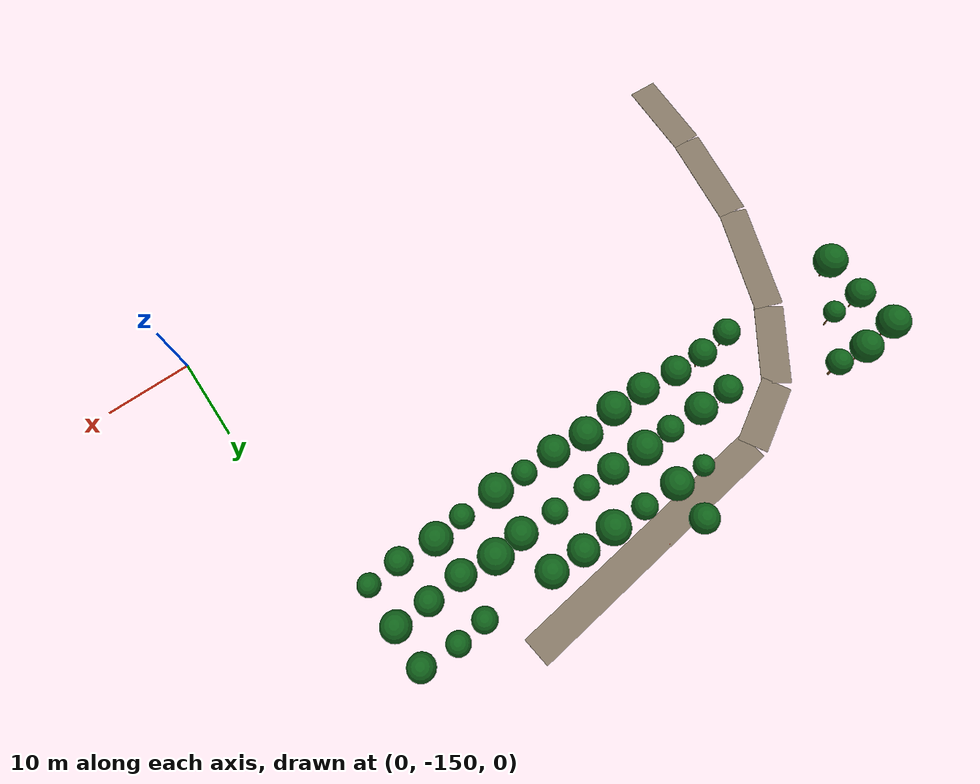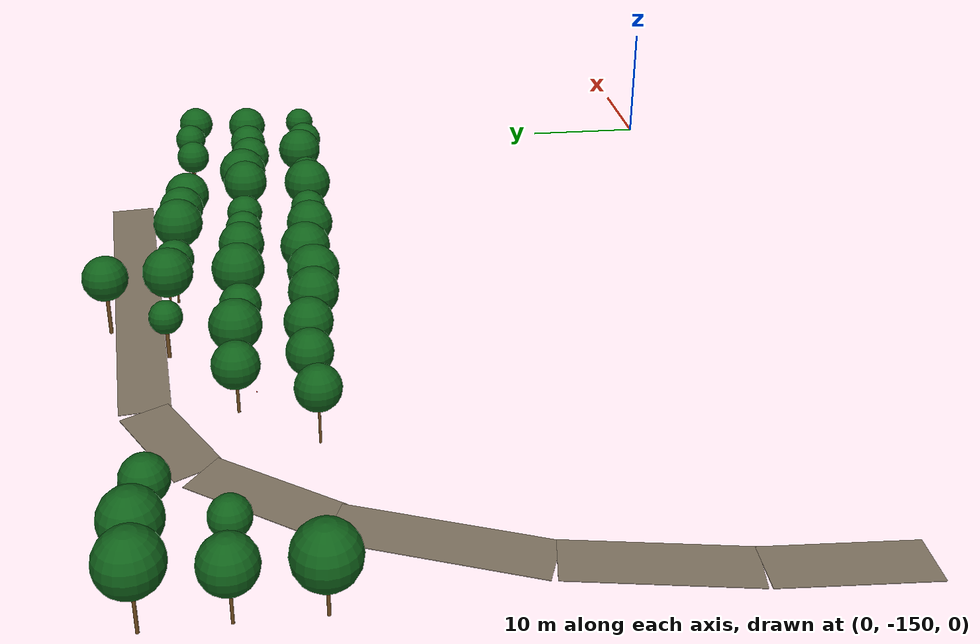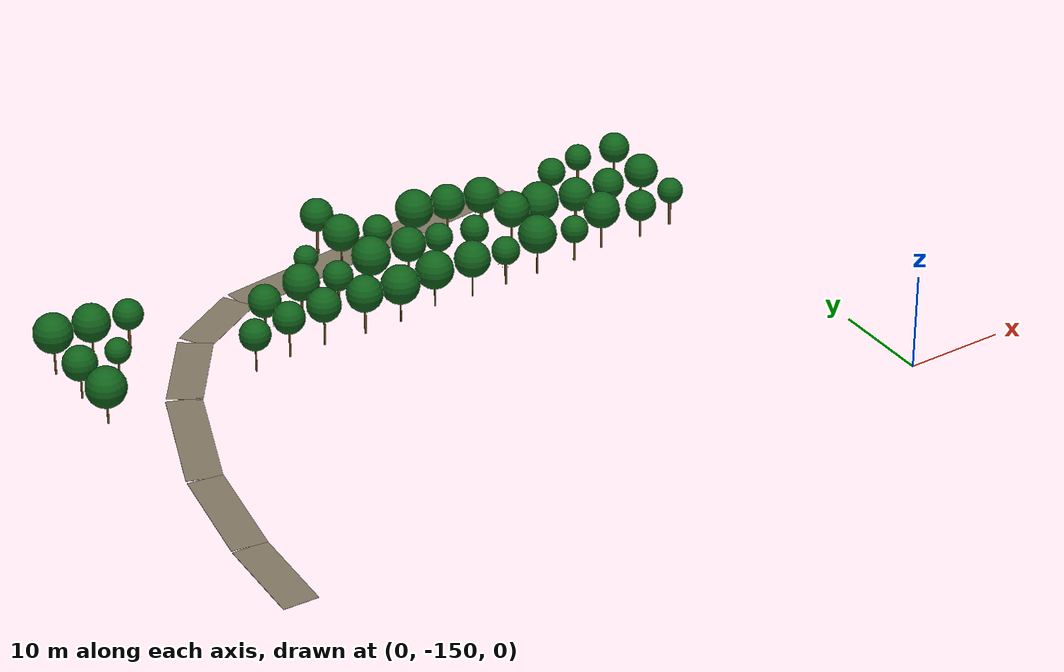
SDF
<sdf version="1.9">
 <world name="cheongsong_orchard">
  <model name="road_19">
   <static>true</static>
   <pose>-67.2 -145.2 0.02 0 0 1.5213</pose>
   <link name="link">
    <collision name="collision">
     <geometry><box><size>9.7 3.5 0.04</size></box></geometry>
     <surface><friction><ode><mu>0.9</mu><mu2>0.9</mu2></ode></friction></surface>
    </collision>
    <visual name="visual">
     <geometry><box><size>9.7 3.5 0.04</size></box></geometry>
     <material><ambient>0.4 0.35 0.28 1</ambient><diffuse>0.5 0.45 0.38 1</diffuse></material>
    </visual>
   </link>
  </model>
  <model name="road_20">
   <static>true</static>
   <pose>-66.0 -134.7 0.02 0 0 1.4038</pose>
   <link name="link">
    <collision name="collision">
     <geometry><box><size>11.4 3.5 0.04</size></box></geometry>
     <surface><friction><ode><mu>0.9</mu><mu2>0.9</mu2></ode></friction></surface>
    </collision>
    <visual name="visual">
     <geometry><box><size>11.4 3.5 0.04</size></box></geometry>
     <material><ambient>0.4 0.35 0.28 1</ambient><diffuse>0.5 0.45 0.38 1</diffuse></material>
    </visual>
   </link>
  </model>
  <model name="road_21">
   <static>true</static>
   <pose>-62.7 -122.9 0.02 0 0 1.1994</pose>
   <link name="link">
    <collision name="collision">
     <geometry><box><size>13.2 3.5 0.04</size></box></geometry>
     <surface><friction><ode><mu>0.9</mu><mu2>0.9</mu2></ode></friction></surface>
    </collision>
    <visual name="visual">
     <geometry><box><size>13.2 3.5 0.04</size></box></geometry>
     <material><ambient>0.4 0.35 0.28 1</ambient><diffuse>0.5 0.45 0.38 1</diffuse></material>
    </visual>
   </link>
  </model>
  <model name="road_22">
   <static>true</static>
   <pose>-57.4 -112.8 0.02 0 0 0.9492</pose>
   <link name="link">
    <collision name="collision">
     <geometry><box><size>9.7 3.5 0.04</size></box></geometry>
     <surface><friction><ode><mu>0.9</mu><mu2>0.9</mu2></ode></friction></surface>
    </collision>
    <visual name="visual">
     <geometry><box><size>9.7 3.5 0.04</size></box></geometry>
     <material><ambient>0.4 0.35 0.28 1</ambient><diffuse>0.5 0.45 0.38 1</diffuse></material>
    </visual>
   </link>
  </model>
  <model name="road_23">
   <static>true</static>
   <pose>-51.0 -106.8 0.02 0 0 0.5135</pose>
   <link name="link">
    <collision name="collision">
     <geometry><box><size>8.2 3.5 0.04</size></box></geometry>
     <surface><friction><ode><mu>0.9</mu><mu2>0.9</mu2></ode></friction></surface>
    </collision>
    <visual name="visual">
     <geometry><box><size>8.2 3.5 0.04</size></box></geometry>
     <material><ambient>0.4 0.35 0.28 1</ambient><diffuse>0.5 0.45 0.38 1</diffuse></material>
    </visual>
   </link>
  </model>
  <model name="road_24">
   <static>true</static>
   <pose>-31.0 -102.9 0.02 0 0 0.1181</pose>
   <link name="link">
    <collision name="collision">
     <geometry><box><size>33.2 3.5 0.04</size></box></geometry>
     <surface><friction><ode><mu>0.9</mu><mu2>0.9</mu2></ode></friction></surface>
    </collision>
    <visual name="visual">
     <geometry><box><size>33.2 3.5 0.04</size></box></geometry>
     <material><ambient>0.4 0.35 0.28 1</ambient><diffuse>0.5 0.45 0.38 1</diffuse></material>
    </visual>
   </link>
  </model>
  <model name="apple_tree_12">
   <static>true</static>
   <pose>-68.01 -116.24 0 0 0 0</pose>
   <link name="link">
    <collision name="trunk_col">
     <pose>0 0 1.01 0 0 0</pose>
     <geometry><cylinder><radius>0.107</radius><length>2.01</length></cylinder></geometry>
    </collision>
    <visual name="trunk_vis">
     <pose>0 0 1.01 0 0 0</pose>
     <geometry><cylinder><radius>0.107</radius><length>2.01</length></cylinder></geometry>
     <material><ambient>0.35 0.22 0.08 1</ambient><diffuse>0.45 0.30 0.12 1</diffuse></material>
    </visual>
    <collision name="canopy_col">
     <pose>0 0 4.01 0 0 0</pose>
     <geometry><sphere><radius>2.00</radius></sphere></geometry>
    </collision>
    <visual name="canopy_vis">
     <pose>0 0 4.01 0 0 0</pose>
     <geometry><sphere><radius>2.00</radius></sphere></geometry>
     <material><ambient>0.04 0.28 0.06 1</ambient><diffuse>0.06 0.38 0.10 1</diffuse></material>
    </visual>
   </link>
  </model>
  <model name="apple_tree_13">
   <static>true</static>
   <pose>-52.17 -116.33 0 0 0 0</pose>
   <link name="link">
    <collision name="trunk_col">
     <pose>0 0 1.29 0 0 0</pose>
     <geometry><cylinder><radius>0.088</radius><length>2.57</length></cylinder></geometry>
    </collision>
    <visual name="trunk_vis">
     <pose>0 0 1.29 0 0 0</pose>
     <geometry><cylinder><radius>0.088</radius><length>2.57</length></cylinder></geometry>
     <material><ambient>0.35 0.22 0.08 1</ambient><diffuse>0.45 0.30 0.12 1</diffuse></material>
    </visual>
    <collision name="canopy_col">
     <pose>0 0 4.12 0 0 0</pose>
     <geometry><sphere><radius>1.55</radius></sphere></geometry>
    </collision>
    <visual name="canopy_vis">
     <pose>0 0 4.12 0 0 0</pose>
     <geometry><sphere><radius>1.55</radius></sphere></geometry>
     <material><ambient>0.04 0.28 0.06 1</ambient><diffuse>0.06 0.38 0.10 1</diffuse></material>
    </visual>
   </link>
  </model>
  <model name="apple_tree_14">
   <static>true</static>
   <pose>-48.22 -115.92 0 0 0 0</pose>
   <link name="link">
    <collision name="trunk_col">
     <pose>0 0 1.40 0 0 0</pose>
     <geometry><cylinder><radius>0.098</radius><length>2.80</length></cylinder></geometry>
    </collision>
    <visual name="trunk_vis">
     <pose>0 0 1.40 0 0 0</pose>
     <geometry><cylinder><radius>0.098</radius><length>2.80</length></cylinder></geometry>
     <material><ambient>0.35 0.22 0.08 1</ambient><diffuse>0.45 0.30 0.12 1</diffuse></material>
    </visual>
    <collision name="canopy_col">
     <pose>0 0 4.40 0 0 0</pose>
     <geometry><sphere><radius>1.60</radius></sphere></geometry>
    </collision>
    <visual name="canopy_vis">
     <pose>0 0 4.40 0 0 0</pose>
     <geometry><sphere><radius>1.60</radius></sphere></geometry>
     <material><ambient>0.04 0.28 0.06 1</ambient><diffuse>0.06 0.38 0.10 1</diffuse></material>
    </visual>
   </link>
  </model>
  <model name="apple_tree_15">
   <static>true</static>
   <pose>-44.38 -115.94 0 0 0 0</pose>
   <link name="link">
    <collision name="trunk_col">
     <pose>0 0 1.40 0 0 0</pose>
     <geometry><cylinder><radius>0.101</radius><length>2.80</length></cylinder></geometry>
    </collision>
    <visual name="trunk_vis">
     <pose>0 0 1.40 0 0 0</pose>
     <geometry><cylinder><radius>0.101</radius><length>2.80</length></cylinder></geometry>
     <material><ambient>0.35 0.22 0.08 1</ambient><diffuse>0.45 0.30 0.12 1</diffuse></material>
    </visual>
    <collision name="canopy_col">
     <pose>0 0 4.51 0 0 0</pose>
     <geometry><sphere><radius>1.71</radius></sphere></geometry>
    </collision>
    <visual name="canopy_vis">
     <pose>0 0 4.51 0 0 0</pose>
     <geometry><sphere><radius>1.71</radius></sphere></geometry>
     <material><ambient>0.04 0.28 0.06 1</ambient><diffuse>0.06 0.38 0.10 1</diffuse></material>
    </visual>
   </link>
  </model>
  <model name="apple_tree_16">
   <static>true</static>
   <pose>-40.12 -116.40 0 0 0 0</pose>
   <link name="link">
    <collision name="trunk_col">
     <pose>0 0 1.35 0 0 0</pose>
     <geometry><cylinder><radius>0.118</radius><length>2.69</length></cylinder></geometry>
    </collision>
    <visual name="trunk_vis">
     <pose>0 0 1.35 0 0 0</pose>
     <geometry><cylinder><radius>0.118</radius><length>2.69</length></cylinder></geometry>
     <material><ambient>0.35 0.22 0.08 1</ambient><diffuse>0.45 0.30 0.12 1</diffuse></material>
    </visual>
    <collision name="canopy_col">
     <pose>0 0 4.52 0 0 0</pose>
     <geometry><sphere><radius>1.82</radius></sphere></geometry>
    </collision>
    <visual name="canopy_vis">
     <pose>0 0 4.52 0 0 0</pose>
     <geometry><sphere><radius>1.82</radius></sphere></geometry>
     <material><ambient>0.04 0.28 0.06 1</ambient><diffuse>0.06 0.38 0.10 1</diffuse></material>
    </visual>
   </link>
  </model>
  <model name="apple_tree_17">
   <static>true</static>
   <pose>-36.17 -116.49 0 0 0 0</pose>
   <link name="link">
    <collision name="trunk_col">
     <pose>0 0 1.13 0 0 0</pose>
     <geometry><cylinder><radius>0.081</radius><length>2.27</length></cylinder></geometry>
    </collision>
    <visual name="trunk_vis">
     <pose>0 0 1.13 0 0 0</pose>
     <geometry><cylinder><radius>0.081</radius><length>2.27</length></cylinder></geometry>
     <material><ambient>0.35 0.22 0.08 1</ambient><diffuse>0.45 0.30 0.12 1</diffuse></material>
    </visual>
    <collision name="canopy_col">
     <pose>0 0 4.21 0 0 0</pose>
     <geometry><sphere><radius>1.94</radius></sphere></geometry>
    </collision>
    <visual name="canopy_vis">
     <pose>0 0 4.21 0 0 0</pose>
     <geometry><sphere><radius>1.94</radius></sphere></geometry>
     <material><ambient>0.04 0.28 0.06 1</ambient><diffuse>0.06 0.38 0.10 1</diffuse></material>
    </visual>
   </link>
  </model>
  <model name="apple_tree_18">
   <static>true</static>
   <pose>-31.96 -115.99 0 0 0 0</pose>
   <link name="link">
    <collision name="trunk_col">
     <pose>0 0 1.12 0 0 0</pose>
     <geometry><cylinder><radius>0.084</radius><length>2.25</length></cylinder></geometry>
    </collision>
    <visual name="trunk_vis">
     <pose>0 0 1.12 0 0 0</pose>
     <geometry><cylinder><radius>0.084</radius><length>2.25</length></cylinder></geometry>
     <material><ambient>0.35 0.22 0.08 1</ambient><diffuse>0.45 0.30 0.12 1</diffuse></material>
    </visual>
    <collision name="canopy_col">
     <pose>0 0 4.15 0 0 0</pose>
     <geometry><sphere><radius>1.90</radius></sphere></geometry>
    </collision>
    <visual name="canopy_vis">
     <pose>0 0 4.15 0 0 0</pose>
     <geometry><sphere><radius>1.90</radius></sphere></geometry>
     <material><ambient>0.04 0.28 0.06 1</ambient><diffuse>0.06 0.38 0.10 1</diffuse></material>
    </visual>
   </link>
  </model>
  <model name="apple_tree_19">
   <static>true</static>
   <pose>-27.92 -116.44 0 0 0 0</pose>
   <link name="link">
    <collision name="trunk_col">
     <pose>0 0 1.21 0 0 0</pose>
     <geometry><cylinder><radius>0.085</radius><length>2.42</length></cylinder></geometry>
    </collision>
    <visual name="trunk_vis">
     <pose>0 0 1.21 0 0 0</pose>
     <geometry><cylinder><radius>0.085</radius><length>2.42</length></cylinder></geometry>
     <material><ambient>0.35 0.22 0.08 1</ambient><diffuse>0.45 0.30 0.12 1</diffuse></material>
    </visual>
    <collision name="canopy_col">
     <pose>0 0 4.23 0 0 0</pose>
     <geometry><sphere><radius>1.81</radius></sphere></geometry>
    </collision>
    <visual name="canopy_vis">
     <pose>0 0 4.23 0 0 0</pose>
     <geometry><sphere><radius>1.81</radius></sphere></geometry>
     <material><ambient>0.04 0.28 0.06 1</ambient><diffuse>0.06 0.38 0.10 1</diffuse></material>
    </visual>
   </link>
  </model>
  <model name="apple_tree_20">
   <static>true</static>
   <pose>-24.03 -116.41 0 0 0 0</pose>
   <link name="link">
    <collision name="trunk_col">
     <pose>0 0 1.21 0 0 0</pose>
     <geometry><cylinder><radius>0.118</radius><length>2.41</length></cylinder></geometry>
    </collision>
    <visual name="trunk_vis">
     <pose>0 0 1.21 0 0 0</pose>
     <geometry><cylinder><radius>0.118</radius><length>2.41</length></cylinder></geometry>
     <material><ambient>0.35 0.22 0.08 1</ambient><diffuse>0.45 0.30 0.12 1</diffuse></material>
    </visual>
    <collision name="canopy_col">
     <pose>0 0 3.83 0 0 0</pose>
     <geometry><sphere><radius>1.41</radius></sphere></geometry>
    </collision>
    <visual name="canopy_vis">
     <pose>0 0 3.83 0 0 0</pose>
     <geometry><sphere><radius>1.41</radius></sphere></geometry>
     <material><ambient>0.04 0.28 0.06 1</ambient><diffuse>0.06 0.38 0.10 1</diffuse></material>
    </visual>
   </link>
  </model>
  <model name="apple_tree_21">
   <static>true</static>
   <pose>-20.36 -116.45 0 0 0 0</pose>
   <link name="link">
    <collision name="trunk_col">
     <pose>0 0 1.28 0 0 0</pose>
     <geometry><cylinder><radius>0.096</radius><length>2.57</length></cylinder></geometry>
    </collision>
    <visual name="trunk_vis">
     <pose>0 0 1.28 0 0 0</pose>
     <geometry><cylinder><radius>0.096</radius><length>2.57</length></cylinder></geometry>
     <material><ambient>0.35 0.22 0.08 1</ambient><diffuse>0.45 0.30 0.12 1</diffuse></material>
    </visual>
    <collision name="canopy_col">
     <pose>0 0 4.49 0 0 0</pose>
     <geometry><sphere><radius>1.92</radius></sphere></geometry>
    </collision>
    <visual name="canopy_vis">
     <pose>0 0 4.49 0 0 0</pose>
     <geometry><sphere><radius>1.92</radius></sphere></geometry>
     <material><ambient>0.04 0.28 0.06 1</ambient><diffuse>0.06 0.38 0.10 1</diffuse></material>
    </visual>
   </link>
  </model>
  <model name="apple_tree_22">
   <static>true</static>
   <pose>-15.97 -116.45 0 0 0 0</pose>
   <link name="link">
    <collision name="trunk_col">
     <pose>0 0 1.09 0 0 0</pose>
     <geometry><cylinder><radius>0.127</radius><length>2.18</length></cylinder></geometry>
    </collision>
    <visual name="trunk_vis">
     <pose>0 0 1.09 0 0 0</pose>
     <geometry><cylinder><radius>0.127</radius><length>2.18</length></cylinder></geometry>
     <material><ambient>0.35 0.22 0.08 1</ambient><diffuse>0.45 0.30 0.12 1</diffuse></material>
    </visual>
    <collision name="canopy_col">
     <pose>0 0 3.55 0 0 0</pose>
     <geometry><sphere><radius>1.37</radius></sphere></geometry>
    </collision>
    <visual name="canopy_vis">
     <pose>0 0 3.55 0 0 0</pose>
     <geometry><sphere><radius>1.37</radius></sphere></geometry>
     <material><ambient>0.04 0.28 0.06 1</ambient><diffuse>0.06 0.38 0.10 1</diffuse></material>
    </visual>
   </link>
  </model>
  <model name="apple_tree_23">
   <static>true</static>
   <pose>-12.41 -115.93 0 0 0 0</pose>
   <link name="link">
    <collision name="trunk_col">
     <pose>0 0 1.25 0 0 0</pose>
     <geometry><cylinder><radius>0.113</radius><length>2.51</length></cylinder></geometry>
    </collision>
    <visual name="trunk_vis">
     <pose>0 0 1.25 0 0 0</pose>
     <geometry><cylinder><radius>0.113</radius><length>2.51</length></cylinder></geometry>
     <material><ambient>0.35 0.22 0.08 1</ambient><diffuse>0.45 0.30 0.12 1</diffuse></material>
    </visual>
    <collision name="canopy_col">
     <pose>0 0 4.33 0 0 0</pose>
     <geometry><sphere><radius>1.83</radius></sphere></geometry>
    </collision>
    <visual name="canopy_vis">
     <pose>0 0 4.33 0 0 0</pose>
     <geometry><sphere><radius>1.83</radius></sphere></geometry>
     <material><ambient>0.04 0.28 0.06 1</ambient><diffuse>0.06 0.38 0.10 1</diffuse></material>
    </visual>
   </link>
  </model>
  <model name="apple_tree_24">
   <static>true</static>
   <pose>-8.01 -116.38 0 0 0 0</pose>
   <link name="link">
    <collision name="trunk_col">
     <pose>0 0 1.02 0 0 0</pose>
     <geometry><cylinder><radius>0.110</radius><length>2.04</length></cylinder></geometry>
    </collision>
    <visual name="trunk_vis">
     <pose>0 0 1.02 0 0 0</pose>
     <geometry><cylinder><radius>0.110</radius><length>2.04</length></cylinder></geometry>
     <material><ambient>0.35 0.22 0.08 1</ambient><diffuse>0.45 0.30 0.12 1</diffuse></material>
    </visual>
    <collision name="canopy_col">
     <pose>0 0 3.58 0 0 0</pose>
     <geometry><sphere><radius>1.54</radius></sphere></geometry>
    </collision>
    <visual name="canopy_vis">
     <pose>0 0 3.58 0 0 0</pose>
     <geometry><sphere><radius>1.54</radius></sphere></geometry>
     <material><ambient>0.04 0.28 0.06 1</ambient><diffuse>0.06 0.38 0.10 1</diffuse></material>
    </visual>
   </link>
  </model>
  <model name="apple_tree_25">
   <static>true</static>
   <pose>-4.21 -116.05 0 0 0 0</pose>
   <link name="link">
    <collision name="trunk_col">
     <pose>0 0 1.30 0 0 0</pose>
     <geometry><cylinder><radius>0.149</radius><length>2.61</length></cylinder></geometry>
    </collision>
    <visual name="trunk_vis">
     <pose>0 0 1.30 0 0 0</pose>
     <geometry><cylinder><radius>0.149</radius><length>2.61</length></cylinder></geometry>
     <material><ambient>0.35 0.22 0.08 1</ambient><diffuse>0.45 0.30 0.12 1</diffuse></material>
    </visual>
    <collision name="canopy_col">
     <pose>0 0 3.89 0 0 0</pose>
     <geometry><sphere><radius>1.28</radius></sphere></geometry>
    </collision>
    <visual name="canopy_vis">
     <pose>0 0 3.89 0 0 0</pose>
     <geometry><sphere><radius>1.28</radius></sphere></geometry>
     <material><ambient>0.04 0.28 0.06 1</ambient><diffuse>0.06 0.38 0.10 1</diffuse></material>
    </visual>
   </link>
  </model>
  <model name="apple_tree_68">
   <static>true</static>
   <pose>-68.04 -111.20 0 0 0 0</pose>
   <link name="link">
    <collision name="trunk_col">
     <pose>0 0 1.10 0 0 0</pose>
     <geometry><cylinder><radius>0.097</radius><length>2.20</length></cylinder></geometry>
    </collision>
    <visual name="trunk_vis">
     <pose>0 0 1.10 0 0 0</pose>
     <geometry><cylinder><radius>0.097</radius><length>2.20</length></cylinder></geometry>
     <material><ambient>0.35 0.22 0.08 1</ambient><diffuse>0.45 0.30 0.12 1</diffuse></material>
    </visual>
    <collision name="canopy_col">
     <pose>0 0 3.91 0 0 0</pose>
     <geometry><sphere><radius>1.71</radius></sphere></geometry>
    </collision>
    <visual name="canopy_vis">
     <pose>0 0 3.91 0 0 0</pose>
     <geometry><sphere><radius>1.71</radius></sphere></geometry>
     <material><ambient>0.04 0.28 0.06 1</ambient><diffuse>0.06 0.38 0.10 1</diffuse></material>
    </visual>
   </link>
  </model>
  <model name="apple_tree_69">
   <static>true</static>
   <pose>-64.03 -111.18 0 0 0 0</pose>
   <link name="link">
    <collision name="trunk_col">
     <pose>0 0 1.28 0 0 0</pose>
     <geometry><cylinder><radius>0.099</radius><length>2.56</length></cylinder></geometry>
    </collision>
    <visual name="trunk_vis">
     <pose>0 0 1.28 0 0 0</pose>
     <geometry><cylinder><radius>0.099</radius><length>2.56</length></cylinder></geometry>
     <material><ambient>0.35 0.22 0.08 1</ambient><diffuse>0.45 0.30 0.12 1</diffuse></material>
    </visual>
    <collision name="canopy_col">
     <pose>0 0 3.82 0 0 0</pose>
     <geometry><sphere><radius>1.26</radius></sphere></geometry>
    </collision>
    <visual name="canopy_vis">
     <pose>0 0 3.82 0 0 0</pose>
     <geometry><sphere><radius>1.26</radius></sphere></geometry>
     <material><ambient>0.04 0.28 0.06 1</ambient><diffuse>0.06 0.38 0.10 1</diffuse></material>
    </visual>
   </link>
  </model>
  <model name="apple_tree_70">
   <static>true</static>
   <pose>-48.07 -111.07 0 0 0 0</pose>
   <link name="link">
    <collision name="trunk_col">
     <pose>0 0 1.01 0 0 0</pose>
     <geometry><cylinder><radius>0.109</radius><length>2.01</length></cylinder></geometry>
    </collision>
    <visual name="trunk_vis">
     <pose>0 0 1.01 0 0 0</pose>
     <geometry><cylinder><radius>0.109</radius><length>2.01</length></cylinder></geometry>
     <material><ambient>0.35 0.22 0.08 1</ambient><diffuse>0.45 0.30 0.12 1</diffuse></material>
    </visual>
    <collision name="canopy_col">
     <pose>0 0 3.65 0 0 0</pose>
     <geometry><sphere><radius>1.63</radius></sphere></geometry>
    </collision>
    <visual name="canopy_vis">
     <pose>0 0 3.65 0 0 0</pose>
     <geometry><sphere><radius>1.63</radius></sphere></geometry>
     <material><ambient>0.04 0.28 0.06 1</ambient><diffuse>0.06 0.38 0.10 1</diffuse></material>
    </visual>
   </link>
  </model>
  <model name="apple_tree_71">
   <static>true</static>
   <pose>-43.95 -110.99 0 0 0 0</pose>
   <link name="link">
    <collision name="trunk_col">
     <pose>0 0 1.24 0 0 0</pose>
     <geometry><cylinder><radius>0.131</radius><length>2.47</length></cylinder></geometry>
    </collision>
    <visual name="trunk_vis">
     <pose>0 0 1.24 0 0 0</pose>
     <geometry><cylinder><radius>0.131</radius><length>2.47</length></cylinder></geometry>
     <material><ambient>0.35 0.22 0.08 1</ambient><diffuse>0.45 0.30 0.12 1</diffuse></material>
    </visual>
    <collision name="canopy_col">
     <pose>0 0 4.31 0 0 0</pose>
     <geometry><sphere><radius>1.84</radius></sphere></geometry>
    </collision>
    <visual name="canopy_vis">
     <pose>0 0 4.31 0 0 0</pose>
     <geometry><sphere><radius>1.84</radius></sphere></geometry>
     <material><ambient>0.04 0.28 0.06 1</ambient><diffuse>0.06 0.38 0.10 1</diffuse></material>
    </visual>
   </link>
  </model>
  <model name="apple_tree_72">
   <static>true</static>
   <pose>-39.95 -111.20 0 0 0 0</pose>
   <link name="link">
    <collision name="trunk_col">
     <pose>0 0 1.11 0 0 0</pose>
     <geometry><cylinder><radius>0.114</radius><length>2.22</length></cylinder></geometry>
    </collision>
    <visual name="trunk_vis">
     <pose>0 0 1.11 0 0 0</pose>
     <geometry><cylinder><radius>0.114</radius><length>2.22</length></cylinder></geometry>
     <material><ambient>0.35 0.22 0.08 1</ambient><diffuse>0.45 0.30 0.12 1</diffuse></material>
    </visual>
    <collision name="canopy_col">
     <pose>0 0 3.73 0 0 0</pose>
     <geometry><sphere><radius>1.51</radius></sphere></geometry>
    </collision>
    <visual name="canopy_vis">
     <pose>0 0 3.73 0 0 0</pose>
     <geometry><sphere><radius>1.51</radius></sphere></geometry>
     <material><ambient>0.04 0.28 0.06 1</ambient><diffuse>0.06 0.38 0.10 1</diffuse></material>
    </visual>
   </link>
  </model>
  <model name="apple_tree_73">
   <static>true</static>
   <pose>-36.09 -111.01 0 0 0 0</pose>
   <link name="link">
    <collision name="trunk_col">
     <pose>0 0 1.33 0 0 0</pose>
     <geometry><cylinder><radius>0.139</radius><length>2.66</length></cylinder></geometry>
    </collision>
    <visual name="trunk_vis">
     <pose>0 0 1.33 0 0 0</pose>
     <geometry><cylinder><radius>0.139</radius><length>2.66</length></cylinder></geometry>
     <material><ambient>0.35 0.22 0.08 1</ambient><diffuse>0.45 0.30 0.12 1</diffuse></material>
    </visual>
    <collision name="canopy_col">
     <pose>0 0 4.59 0 0 0</pose>
     <geometry><sphere><radius>1.94</radius></sphere></geometry>
    </collision>
    <visual name="canopy_vis">
     <pose>0 0 4.59 0 0 0</pose>
     <geometry><sphere><radius>1.94</radius></sphere></geometry>
     <material><ambient>0.04 0.28 0.06 1</ambient><diffuse>0.06 0.38 0.10 1</diffuse></material>
    </visual>
   </link>
  </model>
  <model name="apple_tree_74">
   <static>true</static>
   <pose>-31.90 -111.17 0 0 0 0</pose>
   <link name="link">
    <collision name="trunk_col">
     <pose>0 0 1.42 0 0 0</pose>
     <geometry><cylinder><radius>0.121</radius><length>2.83</length></cylinder></geometry>
    </collision>
    <visual name="trunk_vis">
     <pose>0 0 1.42 0 0 0</pose>
     <geometry><cylinder><radius>0.121</radius><length>2.83</length></cylinder></geometry>
     <material><ambient>0.35 0.22 0.08 1</ambient><diffuse>0.45 0.30 0.12 1</diffuse></material>
    </visual>
    <collision name="canopy_col">
     <pose>0 0 4.56 0 0 0</pose>
     <geometry><sphere><radius>1.73</radius></sphere></geometry>
    </collision>
    <visual name="canopy_vis">
     <pose>0 0 4.56 0 0 0</pose>
     <geometry><sphere><radius>1.73</radius></sphere></geometry>
     <material><ambient>0.04 0.28 0.06 1</ambient><diffuse>0.06 0.38 0.10 1</diffuse></material>
    </visual>
   </link>
  </model>
  <model name="apple_tree_75">
   <static>true</static>
   <pose>-28.44 -111.23 0 0 0 0</pose>
   <link name="link">
    <collision name="trunk_col">
     <pose>0 0 1.40 0 0 0</pose>
     <geometry><cylinder><radius>0.093</radius><length>2.80</length></cylinder></geometry>
    </collision>
    <visual name="trunk_vis">
     <pose>0 0 1.40 0 0 0</pose>
     <geometry><cylinder><radius>0.093</radius><length>2.80</length></cylinder></geometry>
     <material><ambient>0.35 0.22 0.08 1</ambient><diffuse>0.45 0.30 0.12 1</diffuse></material>
    </visual>
    <collision name="canopy_col">
     <pose>0 0 4.20 0 0 0</pose>
     <geometry><sphere><radius>1.41</radius></sphere></geometry>
    </collision>
    <visual name="canopy_vis">
     <pose>0 0 4.20 0 0 0</pose>
     <geometry><sphere><radius>1.41</radius></sphere></geometry>
     <material><ambient>0.04 0.28 0.06 1</ambient><diffuse>0.06 0.38 0.10 1</diffuse></material>
    </visual>
   </link>
  </model>
  <model name="apple_tree_76">
   <static>true</static>
   <pose>-24.29 -111.22 0 0 0 0</pose>
   <link name="link">
    <collision name="trunk_col">
     <pose>0 0 1.14 0 0 0</pose>
     <geometry><cylinder><radius>0.142</radius><length>2.28</length></cylinder></geometry>
    </collision>
    <visual name="trunk_vis">
     <pose>0 0 1.14 0 0 0</pose>
     <geometry><cylinder><radius>0.142</radius><length>2.28</length></cylinder></geometry>
     <material><ambient>0.35 0.22 0.08 1</ambient><diffuse>0.45 0.30 0.12 1</diffuse></material>
    </visual>
    <collision name="canopy_col">
     <pose>0 0 3.70 0 0 0</pose>
     <geometry><sphere><radius>1.42</radius></sphere></geometry>
    </collision>
    <visual name="canopy_vis">
     <pose>0 0 3.70 0 0 0</pose>
     <geometry><sphere><radius>1.42</radius></sphere></geometry>
     <material><ambient>0.04 0.28 0.06 1</ambient><diffuse>0.06 0.38 0.10 1</diffuse></material>
    </visual>
   </link>
  </model>
  <model name="apple_tree_77">
   <static>true</static>
   <pose>-19.92 -111.24 0 0 0 0</pose>
   <link name="link">
    <collision name="trunk_col">
     <pose>0 0 1.38 0 0 0</pose>
     <geometry><cylinder><radius>0.113</radius><length>2.76</length></cylinder></geometry>
    </collision>
    <visual name="trunk_vis">
     <pose>0 0 1.38 0 0 0</pose>
     <geometry><cylinder><radius>0.113</radius><length>2.76</length></cylinder></geometry>
     <material><ambient>0.35 0.22 0.08 1</ambient><diffuse>0.45 0.30 0.12 1</diffuse></material>
    </visual>
    <collision name="canopy_col">
     <pose>0 0 4.56 0 0 0</pose>
     <geometry><sphere><radius>1.80</radius></sphere></geometry>
    </collision>
    <visual name="canopy_vis">
     <pose>0 0 4.56 0 0 0</pose>
     <geometry><sphere><radius>1.80</radius></sphere></geometry>
     <material><ambient>0.04 0.28 0.06 1</ambient><diffuse>0.06 0.38 0.10 1</diffuse></material>
    </visual>
   </link>
  </model>
  <model name="apple_tree_78">
   <static>true</static>
   <pose>-16.46 -110.92 0 0 0 0</pose>
   <link name="link">
    <collision name="trunk_col">
     <pose>0 0 1.08 0 0 0</pose>
     <geometry><cylinder><radius>0.085</radius><length>2.17</length></cylinder></geometry>
    </collision>
    <visual name="trunk_vis">
     <pose>0 0 1.08 0 0 0</pose>
     <geometry><cylinder><radius>0.085</radius><length>2.17</length></cylinder></geometry>
     <material><ambient>0.35 0.22 0.08 1</ambient><diffuse>0.45 0.30 0.12 1</diffuse></material>
    </visual>
    <collision name="canopy_col">
     <pose>0 0 4.13 0 0 0</pose>
     <geometry><sphere><radius>1.97</radius></sphere></geometry>
    </collision>
    <visual name="canopy_vis">
     <pose>0 0 4.13 0 0 0</pose>
     <geometry><sphere><radius>1.97</radius></sphere></geometry>
     <material><ambient>0.04 0.28 0.06 1</ambient><diffuse>0.06 0.38 0.10 1</diffuse></material>
    </visual>
   </link>
  </model>
  <model name="apple_tree_79">
   <static>true</static>
   <pose>-12.47 -111.47 0 0 0 0</pose>
   <link name="link">
    <collision name="trunk_col">
     <pose>0 0 1.10 0 0 0</pose>
     <geometry><cylinder><radius>0.139</radius><length>2.19</length></cylinder></geometry>
    </collision>
    <visual name="trunk_vis">
     <pose>0 0 1.10 0 0 0</pose>
     <geometry><cylinder><radius>0.139</radius><length>2.19</length></cylinder></geometry>
     <material><ambient>0.35 0.22 0.08 1</ambient><diffuse>0.45 0.30 0.12 1</diffuse></material>
    </visual>
    <collision name="canopy_col">
     <pose>0 0 3.89 0 0 0</pose>
     <geometry><sphere><radius>1.70</radius></sphere></geometry>
    </collision>
    <visual name="canopy_vis">
     <pose>0 0 3.89 0 0 0</pose>
     <geometry><sphere><radius>1.70</radius></sphere></geometry>
     <material><ambient>0.04 0.28 0.06 1</ambient><diffuse>0.06 0.38 0.10 1</diffuse></material>
    </visual>
   </link>
  </model>
  <model name="apple_tree_80">
   <static>true</static>
   <pose>-8.35 -111.21 0 0 0 0</pose>
   <link name="link">
    <collision name="trunk_col">
     <pose>0 0 1.03 0 0 0</pose>
     <geometry><cylinder><radius>0.146</radius><length>2.06</length></cylinder></geometry>
    </collision>
    <visual name="trunk_vis">
     <pose>0 0 1.03 0 0 0</pose>
     <geometry><cylinder><radius>0.146</radius><length>2.06</length></cylinder></geometry>
     <material><ambient>0.35 0.22 0.08 1</ambient><diffuse>0.45 0.30 0.12 1</diffuse></material>
    </visual>
    <collision name="canopy_col">
     <pose>0 0 3.63 0 0 0</pose>
     <geometry><sphere><radius>1.57</radius></sphere></geometry>
    </collision>
    <visual name="canopy_vis">
     <pose>0 0 3.63 0 0 0</pose>
     <geometry><sphere><radius>1.57</radius></sphere></geometry>
     <material><ambient>0.04 0.28 0.06 1</ambient><diffuse>0.06 0.38 0.10 1</diffuse></material>
    </visual>
   </link>
  </model>
  <model name="apple_tree_81">
   <static>true</static>
   <pose>-4.25 -111.06 0 0 0 0</pose>
   <link name="link">
    <collision name="trunk_col">
     <pose>0 0 1.01 0 0 0</pose>
     <geometry><cylinder><radius>0.128</radius><length>2.02</length></cylinder></geometry>
    </collision>
    <visual name="trunk_vis">
     <pose>0 0 1.01 0 0 0</pose>
     <geometry><cylinder><radius>0.128</radius><length>2.02</length></cylinder></geometry>
     <material><ambient>0.35 0.22 0.08 1</ambient><diffuse>0.45 0.30 0.12 1</diffuse></material>
    </visual>
    <collision name="canopy_col">
     <pose>0 0 3.73 0 0 0</pose>
     <geometry><sphere><radius>1.70</radius></sphere></geometry>
    </collision>
    <visual name="canopy_vis">
     <pose>0 0 3.73 0 0 0</pose>
     <geometry><sphere><radius>1.70</radius></sphere></geometry>
     <material><ambient>0.04 0.28 0.06 1</ambient><diffuse>0.06 0.38 0.10 1</diffuse></material>
    </visual>
   </link>
  </model>
  <model name="apple_tree_122">
   <static>true</static>
   <pose>-68.20 -106.29 0 0 0 0</pose>
   <link name="link">
    <collision name="trunk_col">
     <pose>0 0 1.35 0 0 0</pose>
     <geometry><cylinder><radius>0.106</radius><length>2.69</length></cylinder></geometry>
    </collision>
    <visual name="trunk_vis">
     <pose>0 0 1.35 0 0 0</pose>
     <geometry><cylinder><radius>0.106</radius><length>2.69</length></cylinder></geometry>
     <material><ambient>0.35 0.22 0.08 1</ambient><diffuse>0.45 0.30 0.12 1</diffuse></material>
    </visual>
    <collision name="canopy_col">
     <pose>0 0 4.64 0 0 0</pose>
     <geometry><sphere><radius>1.95</radius></sphere></geometry>
    </collision>
    <visual name="canopy_vis">
     <pose>0 0 4.64 0 0 0</pose>
     <geometry><sphere><radius>1.95</radius></sphere></geometry>
     <material><ambient>0.04 0.28 0.06 1</ambient><diffuse>0.06 0.38 0.10 1</diffuse></material>
    </visual>
   </link>
  </model>
  <model name="apple_tree_123">
   <static>true</static>
   <pose>-63.97 -105.90 0 0 0 0</pose>
   <link name="link">
    <collision name="trunk_col">
     <pose>0 0 1.09 0 0 0</pose>
     <geometry><cylinder><radius>0.107</radius><length>2.18</length></cylinder></geometry>
    </collision>
    <visual name="trunk_vis">
     <pose>0 0 1.09 0 0 0</pose>
     <geometry><cylinder><radius>0.107</radius><length>2.18</length></cylinder></geometry>
     <material><ambient>0.35 0.22 0.08 1</ambient><diffuse>0.45 0.30 0.12 1</diffuse></material>
    </visual>
    <collision name="canopy_col">
     <pose>0 0 4.07 0 0 0</pose>
     <geometry><sphere><radius>1.88</radius></sphere></geometry>
    </collision>
    <visual name="canopy_vis">
     <pose>0 0 4.07 0 0 0</pose>
     <geometry><sphere><radius>1.88</radius></sphere></geometry>
     <material><ambient>0.04 0.28 0.06 1</ambient><diffuse>0.06 0.38 0.10 1</diffuse></material>
    </visual>
   </link>
  </model>
  <model name="apple_tree_124">
   <static>true</static>
   <pose>-60.24 -106.30 0 0 0 0</pose>
   <link name="link">
    <collision name="trunk_col">
     <pose>0 0 1.21 0 0 0</pose>
     <geometry><cylinder><radius>0.144</radius><length>2.41</length></cylinder></geometry>
    </collision>
    <visual name="trunk_vis">
     <pose>0 0 1.21 0 0 0</pose>
     <geometry><cylinder><radius>0.144</radius><length>2.41</length></cylinder></geometry>
     <material><ambient>0.35 0.22 0.08 1</ambient><diffuse>0.45 0.30 0.12 1</diffuse></material>
    </visual>
    <collision name="canopy_col">
     <pose>0 0 3.92 0 0 0</pose>
     <geometry><sphere><radius>1.50</radius></sphere></geometry>
    </collision>
    <visual name="canopy_vis">
     <pose>0 0 3.92 0 0 0</pose>
     <geometry><sphere><radius>1.50</radius></sphere></geometry>
     <material><ambient>0.04 0.28 0.06 1</ambient><diffuse>0.06 0.38 0.10 1</diffuse></material>
    </visual>
   </link>
  </model>
  <model name="apple_tree_125">
   <static>true</static>
   <pose>-40.43 -105.98 0 0 0 0</pose>
   <link name="link">
    <collision name="trunk_col">
     <pose>0 0 1.02 0 0 0</pose>
     <geometry><cylinder><radius>0.144</radius><length>2.05</length></cylinder></geometry>
    </collision>
    <visual name="trunk_vis">
     <pose>0 0 1.02 0 0 0</pose>
     <geometry><cylinder><radius>0.144</radius><length>2.05</length></cylinder></geometry>
     <material><ambient>0.35 0.22 0.08 1</ambient><diffuse>0.45 0.30 0.12 1</diffuse></material>
    </visual>
    <collision name="canopy_col">
     <pose>0 0 3.26 0 0 0</pose>
     <geometry><sphere><radius>1.21</radius></sphere></geometry>
    </collision>
    <visual name="canopy_vis">
     <pose>0 0 3.26 0 0 0</pose>
     <geometry><sphere><radius>1.21</radius></sphere></geometry>
     <material><ambient>0.04 0.28 0.06 1</ambient><diffuse>0.06 0.38 0.10 1</diffuse></material>
    </visual>
   </link>
  </model>
  <model name="apple_tree_126">
   <static>true</static>
   <pose>-36.40 -105.97 0 0 0 0</pose>
   <link name="link">
    <collision name="trunk_col">
     <pose>0 0 1.45 0 0 0</pose>
     <geometry><cylinder><radius>0.085</radius><length>2.90</length></cylinder></geometry>
    </collision>
    <visual name="trunk_vis">
     <pose>0 0 1.45 0 0 0</pose>
     <geometry><cylinder><radius>0.085</radius><length>2.90</length></cylinder></geometry>
     <material><ambient>0.35 0.22 0.08 1</ambient><diffuse>0.45 0.30 0.12 1</diffuse></material>
    </visual>
    <collision name="canopy_col">
     <pose>0 0 4.72 0 0 0</pose>
     <geometry><sphere><radius>1.83</radius></sphere></geometry>
    </collision>
    <visual name="canopy_vis">
     <pose>0 0 4.72 0 0 0</pose>
     <geometry><sphere><radius>1.83</radius></sphere></geometry>
     <material><ambient>0.04 0.28 0.06 1</ambient><diffuse>0.06 0.38 0.10 1</diffuse></material>
    </visual>
   </link>
  </model>
  <model name="apple_tree_127">
   <static>true</static>
   <pose>-32.33 -106.12 0 0 0 0</pose>
   <link name="link">
    <collision name="trunk_col">
     <pose>0 0 1.17 0 0 0</pose>
     <geometry><cylinder><radius>0.086</radius><length>2.34</length></cylinder></geometry>
    </collision>
    <visual name="trunk_vis">
     <pose>0 0 1.17 0 0 0</pose>
     <geometry><cylinder><radius>0.086</radius><length>2.34</length></cylinder></geometry>
     <material><ambient>0.35 0.22 0.08 1</ambient><diffuse>0.45 0.30 0.12 1</diffuse></material>
    </visual>
    <collision name="canopy_col">
     <pose>0 0 3.80 0 0 0</pose>
     <geometry><sphere><radius>1.46</radius></sphere></geometry>
    </collision>
    <visual name="canopy_vis">
     <pose>0 0 3.80 0 0 0</pose>
     <geometry><sphere><radius>1.46</radius></sphere></geometry>
     <material><ambient>0.04 0.28 0.06 1</ambient><diffuse>0.06 0.38 0.10 1</diffuse></material>
    </visual>
   </link>
  </model>
  <model name="apple_tree_128">
   <static>true</static>
   <pose>-28.08 -106.17 0 0 0 0</pose>
   <link name="link">
    <collision name="trunk_col">
     <pose>0 0 1.44 0 0 0</pose>
     <geometry><cylinder><radius>0.124</radius><length>2.88</length></cylinder></geometry>
    </collision>
    <visual name="trunk_vis">
     <pose>0 0 1.44 0 0 0</pose>
     <geometry><cylinder><radius>0.124</radius><length>2.88</length></cylinder></geometry>
     <material><ambient>0.35 0.22 0.08 1</ambient><diffuse>0.45 0.30 0.12 1</diffuse></material>
    </visual>
    <collision name="canopy_col">
     <pose>0 0 4.79 0 0 0</pose>
     <geometry><sphere><radius>1.91</radius></sphere></geometry>
    </collision>
    <visual name="canopy_vis">
     <pose>0 0 4.79 0 0 0</pose>
     <geometry><sphere><radius>1.91</radius></sphere></geometry>
     <material><ambient>0.04 0.28 0.06 1</ambient><diffuse>0.06 0.38 0.10 1</diffuse></material>
    </visual>
   </link>
  </model>
  <model name="apple_tree_129">
   <static>true</static>
   <pose>-24.20 -106.16 0 0 0 0</pose>
   <link name="link">
    <collision name="trunk_col">
     <pose>0 0 1.28 0 0 0</pose>
     <geometry><cylinder><radius>0.096</radius><length>2.55</length></cylinder></geometry>
    </collision>
    <visual name="trunk_vis">
     <pose>0 0 1.28 0 0 0</pose>
     <geometry><cylinder><radius>0.096</radius><length>2.55</length></cylinder></geometry>
     <material><ambient>0.35 0.22 0.08 1</ambient><diffuse>0.45 0.30 0.12 1</diffuse></material>
    </visual>
    <collision name="canopy_col">
     <pose>0 0 4.30 0 0 0</pose>
     <geometry><sphere><radius>1.75</radius></sphere></geometry>
    </collision>
    <visual name="canopy_vis">
     <pose>0 0 4.30 0 0 0</pose>
     <geometry><sphere><radius>1.75</radius></sphere></geometry>
     <material><ambient>0.04 0.28 0.06 1</ambient><diffuse>0.06 0.38 0.10 1</diffuse></material>
    </visual>
   </link>
  </model>
  <model name="apple_tree_130">
   <static>true</static>
   <pose>-20.32 -106.35 0 0 0 0</pose>
   <link name="link">
    <collision name="trunk_col">
     <pose>0 0 1.02 0 0 0</pose>
     <geometry><cylinder><radius>0.148</radius><length>2.04</length></cylinder></geometry>
    </collision>
    <visual name="trunk_vis">
     <pose>0 0 1.02 0 0 0</pose>
     <geometry><cylinder><radius>0.148</radius><length>2.04</length></cylinder></geometry>
     <material><ambient>0.35 0.22 0.08 1</ambient><diffuse>0.45 0.30 0.12 1</diffuse></material>
    </visual>
    <collision name="canopy_col">
     <pose>0 0 3.85 0 0 0</pose>
     <geometry><sphere><radius>1.81</radius></sphere></geometry>
    </collision>
    <visual name="canopy_vis">
     <pose>0 0 3.85 0 0 0</pose>
     <geometry><sphere><radius>1.81</radius></sphere></geometry>
     <material><ambient>0.04 0.28 0.06 1</ambient><diffuse>0.06 0.38 0.10 1</diffuse></material>
    </visual>
   </link>
  </model>
  <model name="apple_tree_131">
   <static>true</static>
   <pose>-11.94 -106.40 0 0 0 0</pose>
   <link name="link">
    <collision name="trunk_col">
     <pose>0 0 1.20 0 0 0</pose>
     <geometry><cylinder><radius>0.098</radius><length>2.40</length></cylinder></geometry>
    </collision>
    <visual name="trunk_vis">
     <pose>0 0 1.20 0 0 0</pose>
     <geometry><cylinder><radius>0.098</radius><length>2.40</length></cylinder></geometry>
     <material><ambient>0.35 0.22 0.08 1</ambient><diffuse>0.45 0.30 0.12 1</diffuse></material>
    </visual>
    <collision name="canopy_col">
     <pose>0 0 3.80 0 0 0</pose>
     <geometry><sphere><radius>1.40</radius></sphere></geometry>
    </collision>
    <visual name="canopy_vis">
     <pose>0 0 3.80 0 0 0</pose>
     <geometry><sphere><radius>1.40</radius></sphere></geometry>
     <material><ambient>0.04 0.28 0.06 1</ambient><diffuse>0.06 0.38 0.10 1</diffuse></material>
    </visual>
   </link>
  </model>
  <model name="apple_tree_132">
   <static>true</static>
   <pose>-8.48 -106.01 0 0 0 0</pose>
   <link name="link">
    <collision name="trunk_col">
     <pose>0 0 1.41 0 0 0</pose>
     <geometry><cylinder><radius>0.127</radius><length>2.83</length></cylinder></geometry>
    </collision>
    <visual name="trunk_vis">
     <pose>0 0 1.41 0 0 0</pose>
     <geometry><cylinder><radius>0.127</radius><length>2.83</length></cylinder></geometry>
     <material><ambient>0.35 0.22 0.08 1</ambient><diffuse>0.45 0.30 0.12 1</diffuse></material>
    </visual>
    <collision name="canopy_col">
     <pose>0 0 4.16 0 0 0</pose>
     <geometry><sphere><radius>1.33</radius></sphere></geometry>
    </collision>
    <visual name="canopy_vis">
     <pose>0 0 4.16 0 0 0</pose>
     <geometry><sphere><radius>1.33</radius></sphere></geometry>
     <material><ambient>0.04 0.28 0.06 1</ambient><diffuse>0.06 0.38 0.10 1</diffuse></material>
    </visual>
   </link>
  </model>
  <model name="apple_tree_133">
   <static>true</static>
   <pose>-4.22 -106.28 0 0 0 0</pose>
   <link name="link">
    <collision name="trunk_col">
     <pose>0 0 1.26 0 0 0</pose>
     <geometry><cylinder><radius>0.125</radius><length>2.52</length></cylinder></geometry>
    </collision>
    <visual name="trunk_vis">
     <pose>0 0 1.26 0 0 0</pose>
     <geometry><cylinder><radius>0.125</radius><length>2.52</length></cylinder></geometry>
     <material><ambient>0.35 0.22 0.08 1</ambient><diffuse>0.45 0.30 0.12 1</diffuse></material>
    </visual>
    <collision name="canopy_col">
     <pose>0 0 4.06 0 0 0</pose>
     <geometry><sphere><radius>1.54</radius></sphere></geometry>
    </collision>
    <visual name="canopy_vis">
     <pose>0 0 4.06 0 0 0</pose>
     <geometry><sphere><radius>1.54</radius></sphere></geometry>
     <material><ambient>0.04 0.28 0.06 1</ambient><diffuse>0.06 0.38 0.10 1</diffuse></material>
    </visual>
   </link>
  </model>
  <model name="apple_tree_179">
   <static>true</static>
   <pose>-36.46 -101.48 0 0 0 0</pose>
   <link name="link">
    <collision name="trunk_col">
     <pose>0 0 1.42 0 0 0</pose>
     <geometry><cylinder><radius>0.140</radius><length>2.85</length></cylinder></geometry>
    </collision>
    <visual name="trunk_vis">
     <pose>0 0 1.42 0 0 0</pose>
     <geometry><cylinder><radius>0.140</radius><length>2.85</length></cylinder></geometry>
     <material><ambient>0.35 0.22 0.08 1</ambient><diffuse>0.45 0.30 0.12 1</diffuse></material>
    </visual>
    <collision name="canopy_col">
     <pose>0 0 4.51 0 0 0</pose>
     <geometry><sphere><radius>1.66</radius></sphere></geometry>
    </collision>
    <visual name="canopy_vis">
     <pose>0 0 4.51 0 0 0</pose>
     <geometry><sphere><radius>1.66</radius></sphere></geometry>
     <material><ambient>0.04 0.28 0.06 1</ambient><diffuse>0.06 0.38 0.10 1</diffuse></material>
    </visual>
   </link>
  </model>
  <model name="apple_20_0">
   <static>true</static>
   <pose>-24.45 -116.19 2.38 0 0 0</pose>
   <link name="link">
    <visual name="visual">
     <geometry><sphere><radius>0.04</radius></sphere></geometry>
     <material><ambient>0.7 0.05 0.02 1</ambient><diffuse>0.9 0.10 0.05 1</diffuse></material>
    </visual>
   </link>
  </model>
  <model name="apple_20_1">
   <static>true</static>
   <pose>-24.09 -116.88 2.16 0 0 0</pose>
   <link name="link">
    <visual name="visual">
     <geometry><sphere><radius>0.04</radius></sphere></geometry>
     <material><ambient>0.7 0.05 0.02 1</ambient><diffuse>0.9 0.10 0.05 1</diffuse></material>
    </visual>
   </link>
  </model>
  <model name="apple_20_2">
   <static>true</static>
   <pose>-23.19 -116.44 2.28 0 0 0</pose>
   <link name="link">
    <visual name="visual">
     <geometry><sphere><radius>0.04</radius></sphere></geometry>
     <material><ambient>0.7 0.05 0.02 1</ambient><diffuse>0.9 0.10 0.05 1</diffuse></material>
    </visual>
   </link>
  </model>
  <model name="apple_20_3">
   <static>true</static>
   <pose>-24.43 -116.46 2.07 0 0 0</pose>
   <link name="link">
    <visual name="visual">
     <geometry><sphere><radius>0.04</radius></sphere></geometry>
     <material><ambient>0.7 0.05 0.02 1</ambient><diffuse>0.9 0.10 0.05 1</diffuse></material>
    </visual>
   </link>
  </model>
  <model name="apple_20_4">
   <static>true</static>
   <pose>-24.44 -115.74 2.08 0 0 0</pose>
   <link name="link">
    <visual name="visual">
     <geometry><sphere><radius>0.04</radius></sphere></geometry>
     <material><ambient>0.7 0.05 0.02 1</ambient><diffuse>0.9 0.10 0.05 1</diffuse></material>
    </visual>
   </link>
  </model>
  <model name="apple_70_0">
   <static>true</static>
   <pose>-47.02 -110.63 1.80 0 0 0</pose>
   <link name="link">
    <visual name="visual">
     <geometry><sphere><radius>0.04</radius></sphere></geometry>
     <material><ambient>0.7 0.05 0.02 1</ambient><diffuse>0.9 0.10 0.05 1</diffuse></material>
    </visual>
   </link>
  </model>
  <model name="apple_70_1">
   <static>true</static>
   <pose>-47.92 -112.31 1.38 0 0 0</pose>
   <link name="link">
    <visual name="visual">
     <geometry><sphere><radius>0.04</radius></sphere></geometry>
     <material><ambient>0.7 0.05 0.02 1</ambient><diffuse>0.9 0.10 0.05 1</diffuse></material>
    </visual>
   </link>
  </model>
  <model name="apple_70_2">
   <static>true</static>
   <pose>-47.43 -111.67 1.90 0 0 0</pose>
   <link name="link">
    <visual name="visual">
     <geometry><sphere><radius>0.04</radius></sphere></geometry>
     <material><ambient>0.7 0.05 0.02 1</ambient><diffuse>0.9 0.10 0.05 1</diffuse></material>
    </visual>
   </link>
  </model>
  <model name="apple_70_3">
   <static>true</static>
   <pose>-47.51 -111.28 1.81 0 0 0</pose>
   <link name="link">
    <visual name="visual">
     <geometry><sphere><radius>0.04</radius></sphere></geometry>
     <material><ambient>0.7 0.05 0.02 1</ambient><diffuse>0.9 0.10 0.05 1</diffuse></material>
    </visual>
   </link>
  </model>
  <model name="apple_80_0">
   <static>true</static>
   <pose>-8.30 -111.66 2.10 0 0 0</pose>
   <link name="link">
    <visual name="visual">
     <geometry><sphere><radius>0.04</radius></sphere></geometry>
     <material><ambient>0.7 0.05 0.02 1</ambient><diffuse>0.9 0.10 0.05 1</diffuse></material>
    </visual>
   </link>
  </model>
  <model name="apple_80_1">
   <static>true</static>
   <pose>-8.35 -111.62 2.33 0 0 0</pose>
   <link name="link">
    <visual name="visual">
     <geometry><sphere><radius>0.04</radius></sphere></geometry>
     <material><ambient>0.7 0.05 0.02 1</ambient><diffuse>0.9 0.10 0.05 1</diffuse></material>
    </visual>
   </link>
  </model>
  <model name="apple_80_2">
   <static>true</static>
   <pose>-7.95 -111.29 1.46 0 0 0</pose>
   <link name="link">
    <visual name="visual">
     <geometry><sphere><radius>0.04</radius></sphere></geometry>
     <material><ambient>0.7 0.05 0.02 1</ambient><diffuse>0.9 0.10 0.05 1</diffuse></material>
    </visual>
   </link>
  </model>
  <model name="apple_80_3">
   <static>true</static>
   <pose>-8.71 -110.33 2.49 0 0 0</pose>
   <link name="link">
    <visual name="visual">
     <geometry><sphere><radius>0.04</radius></sphere></geometry>
     <material><ambient>0.7 0.05 0.02 1</ambient><diffuse>0.9 0.10 0.05 1</diffuse></material>
    </visual>
   </link>
  </model>
  <model name="apple_130_0">
   <static>true</static>
   <pose>-19.75 -106.93 2.19 0 0 0</pose>
   <link name="link">
    <visual name="visual">
     <geometry><sphere><radius>0.04</radius></sphere></geometry>
     <material><ambient>0.7 0.05 0.02 1</ambient><diffuse>0.9 0.10 0.05 1</diffuse></material>
    </visual>
   </link>
  </model>
  <model name="apple_130_1">
   <static>true</static>
   <pose>-20.03 -106.55 2.32 0 0 0</pose>
   <link name="link">
    <visual name="visual">
     <geometry><sphere><radius>0.04</radius></sphere></geometry>
     <material><ambient>0.7 0.05 0.02 1</ambient><diffuse>0.9 0.10 0.05 1</diffuse></material>
    </visual>
   </link>
  </model>
  <model name="apple_130_2">
   <static>true</static>
   <pose>-20.51 -105.65 1.50 0 0 0</pose>
   <link name="link">
    <visual name="visual">
     <geometry><sphere><radius>0.04</radius></sphere></geometry>
     <material><ambient>0.7 0.05 0.02 1</ambient><diffuse>0.9 0.10 0.05 1</diffuse></material>
    </visual>
   </link>
  </model>
  <model name="apple_130_3">
   <static>true</static>
   <pose>-21.25 -106.54 2.32 0 0 0</pose>
   <link name="link">
    <visual name="visual">
     <geometry><sphere><radius>0.04</radius></sphere></geometry>
     <material><ambient>0.7 0.05 0.02 1</ambient><diffuse>0.9 0.10 0.05 1</diffuse></material>
    </visual>
   </link>
  </model>
  <model name="apple_130_4">
   <static>true</static>
   <pose>-20.13 -106.01 2.42 0 0 0</pose>
   <link name="link">
    <visual name="visual">
     <geometry><sphere><radius>0.04</radius></sphere></geometry>
     <material><ambient>0.7 0.05 0.02 1</ambient><diffuse>0.9 0.10 0.05 1</diffuse></material>
    </visual>
   </link>
  </model>
  <model name="apple_180_1">
   <static>true</static>
   <pose>-32.35 -101.57 2.24 0 0 0</pose>
   <link name="link">
    <visual name="visual">
     <geometry><sphere><radius>0.04</radius></sphere></geometry>
     <material><ambient>0.7 0.05 0.02 1</ambient><diffuse>0.9 0.10 0.05 1</diffuse></material>
    </visual>
   </link>
  </model>
 </world>
</sdf>
